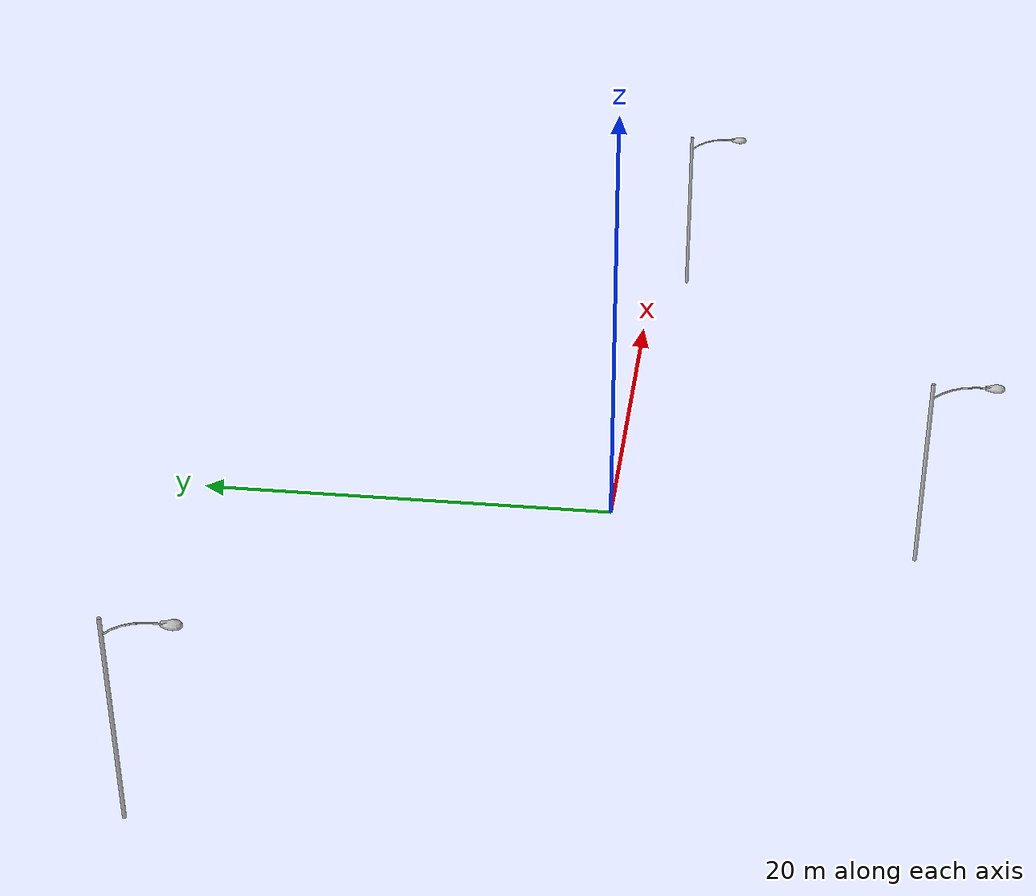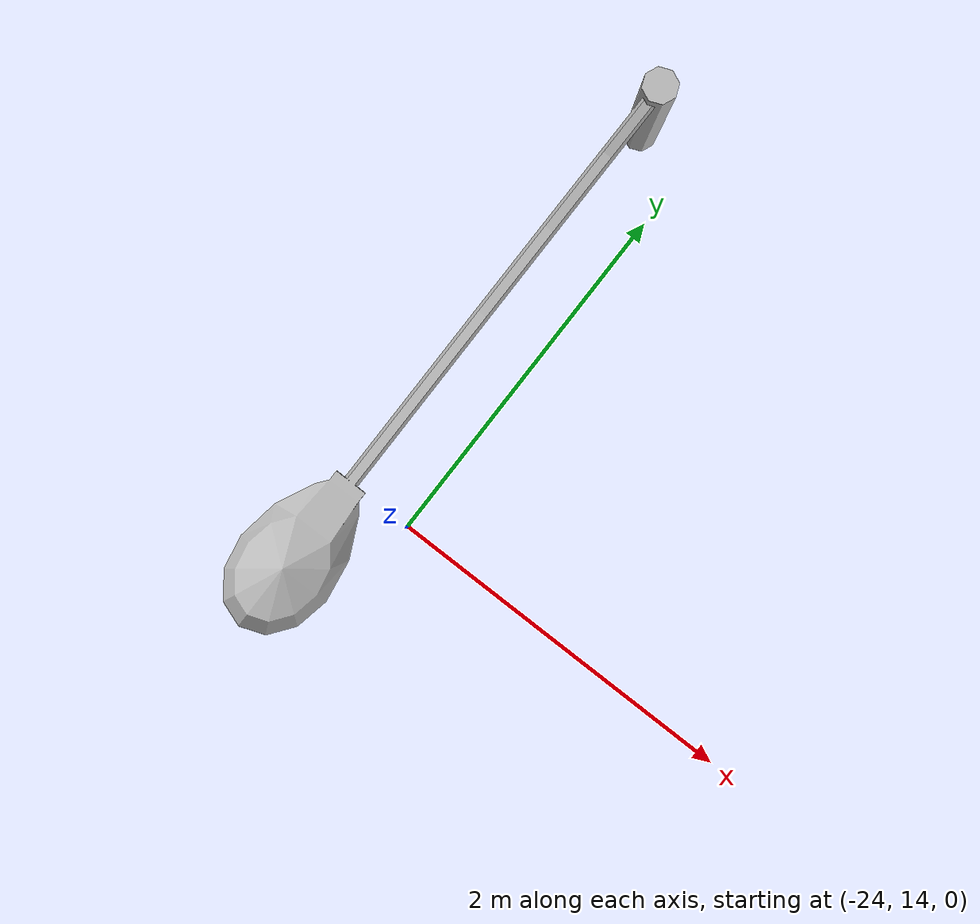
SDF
<?xml version='1.0'?>
<sdf version='1.6'>
  <model name='model1'>
    <model name='Lamp Post'>
      <static>1</static>
      <link name='link'>
        <collision name='collision'>
          <geometry>
            <mesh>
              <uri>model://lamp_post/meshes/lamp_post.dae</uri>
              <scale>3 3 3</scale>
            </mesh>
          </geometry>
        </collision>
        <visual name='visual'>
          <geometry>
            <mesh>
              <uri>model://lamp_post/meshes/lamp_post.dae</uri>
              <scale>3 3 3</scale>
            </mesh>
          </geometry>
        </visual>
      </link>
      <pose frame=''>26.7087 -2.06622 0 0 -0 0</pose>
    </model>
    <model name='Lamp Post_0'>
      <static>1</static>
      <link name='link'>
        <collision name='collision'>
          <geometry>
            <mesh>
              <uri>model://lamp_post/meshes/lamp_post.dae</uri>
              <scale>3 3 3</scale>
            </mesh>
          </geometry>
        </collision>
        <visual name='visual'>
          <geometry>
            <mesh>
              <uri>model://lamp_post/meshes/lamp_post.dae</uri>
              <scale>3 3 3</scale>
            </mesh>
          </geometry>
        </visual>
      </link>
      <pose frame=''>-24.3052 16.3338 0 0 -0 0</pose>
    </model>
    <model name='Lamp Post_1'>
      <static>1</static>
      <link name='link'>
        <collision name='collision'>
          <geometry>
            <mesh>
              <uri>model://lamp_post/meshes/lamp_post.dae</uri>
              <scale>3 3 3</scale>
            </mesh>
          </geometry>
        </collision>
        <visual name='visual'>
          <geometry>
            <mesh>
              <uri>model://lamp_post/meshes/lamp_post.dae</uri>
              <scale>3 3 3</scale>
            </mesh>
          </geometry>
        </visual>
      </link>
      <pose frame=''>-2.40339 -14.2675 0 0 -0 0</pose>
    </model>
    <static>0</static>
    <allow_auto_disable>1</allow_auto_disable>
  </model>
</sdf>
